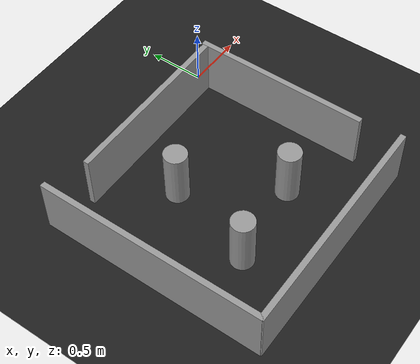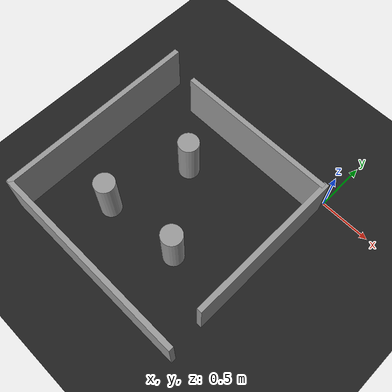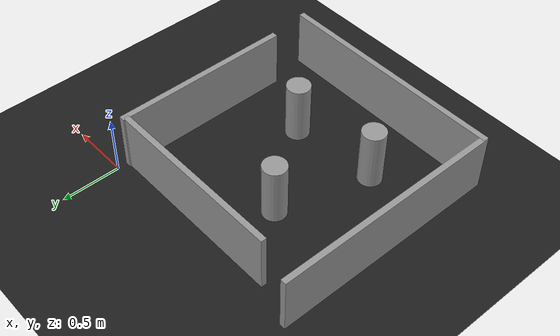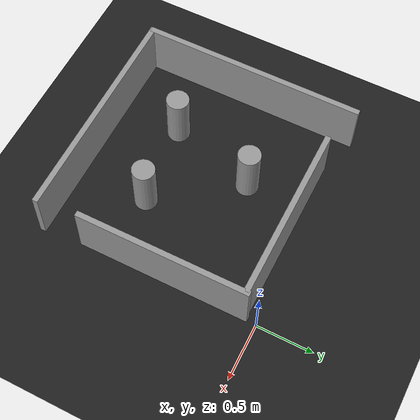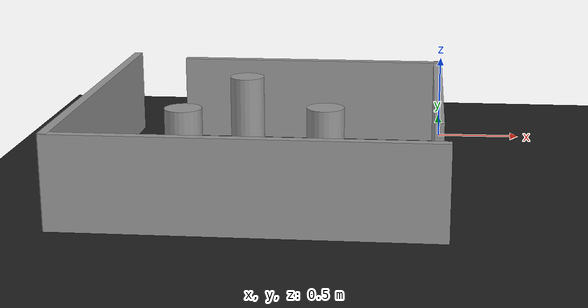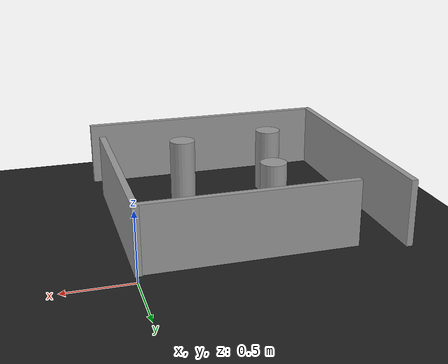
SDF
<sdf version="1.9">
 <world name="default">
  <scene>
   <ambient>0 0 0 1</ambient>
   <shadows>false</shadows>
   <grid>false</grid>
   <background>0.699999988 0.699999988 0.699999988 1</background>
  </scene>
  <light name="sun" type="directional">
   <pose>0 0 10 0 0 0</pose>
   <diffuse>0.800000012 0.800000012 0.800000012 1</diffuse>
   <specular>0.100000001 0.100000001 0.100000001 1</specular>
   <attenuation>
    <range>1000</range>
    <constant>0.90000000000000002</constant>
    <linear>0.01</linear>
    <quadratic>0.001</quadratic>
   </attenuation>
   <direction>-0.5 0.5 -1</direction>
   <spot><inner_angle>0</inner_angle><outer_angle>0</outer_angle><falloff>0</falloff></spot>
  </light>
  <model name="ground2">
   <pose>0 0 -0.10000000000000001 0 0 0</pose>
   <static>true</static>
   <link name="ground">
    <collision name="ground_coll"><geometry><box><size>8 8 0.01</size></box></geometry></collision>
    <visual name="ground_vis">
     <geometry><box><size>10 10 0.01</size></box></geometry>
     <material>
      <script><uri>file://media/materials/scripts/gazebo.material</uri><name>Gazebo/FlatBlack</name></script>
     </material>
    </visual>
   </link>
  </model>
  <gravity>0 0 -9.8000000000000007</gravity>
  <magnetic_field>6.0000000000000002e-06 2.3e-05 -4.1999999999999998e-05</magnetic_field>
  <atmosphere type="adiabatic"/>
  <physics name="default_physics" default="false" type="ode">
   <max_step_size>0.001</max_step_size>
   <real_time_factor>1</real_time_factor>
   <real_time_update_rate>1000</real_time_update_rate>
  </physics>
  <spherical_coordinates>
   <surface_model>EARTH_WGS84</surface_model>
   <latitude_deg>0</latitude_deg>
   <longitude_deg>0</longitude_deg>
   <elevation>0</elevation>
   <heading_deg>0</heading_deg>
  </spherical_coordinates>
  <light name="user_point_light_2" type="point">
   <pose>-0.94814600000000004 0.60451900000000003 1 0 0 0</pose>
   <diffuse>0.5 0.5 0.5 1</diffuse>
   <specular>0.100000001 0.100000001 0.100000001 1</specular>
   <attenuation>
    <range>20</range>
    <constant>0.5</constant>
    <linear>0.01</linear>
    <quadratic>0.001</quadratic>
   </attenuation>
   <cast_shadows>false</cast_shadows>
   <direction>0 0 -1</direction>
   <spot><inner_angle>0</inner_angle><outer_angle>0</outer_angle><falloff>0</falloff></spot>
  </light>
  <light name="user_point_light_6" type="point">
   <pose>1.6385400000000001 1.6956500000000001 1 0 0 0</pose>
   <diffuse>0.5 0.5 0.5 1</diffuse>
   <specular>0.100000001 0.100000001 0.100000001 1</specular>
   <attenuation>
    <range>20</range>
    <constant>0.5</constant>
    <linear>0.01</linear>
    <quadratic>0.001</quadratic>
   </attenuation>
   <cast_shadows>false</cast_shadows>
   <direction>0 0 -1</direction>
   <spot><inner_angle>0</inner_angle><outer_angle>0</outer_angle><falloff>0</falloff></spot>
  </light>
  <light name="user_point_light_7" type="point">
   <pose>0.41999999999999998 -3.3100000000000001 1 0 0 0</pose>
   <diffuse>0.5 0.5 0.5 1</diffuse>
   <specular>0.100000001 0.100000001 0.100000001 1</specular>
   <attenuation>
    <range>20</range>
    <constant>0.5</constant>
    <linear>0.01</linear>
    <quadratic>0.001</quadratic>
   </attenuation>
   <cast_shadows>false</cast_shadows>
   <direction>0 0 -1</direction>
   <spot><inner_angle>0</inner_angle><outer_angle>0</outer_angle><falloff>0</falloff></spot>
  </light>
  <light name="user_point_light_8" type="point">
   <pose>-1.8 1.5 1 0 0 0</pose>
   <diffuse>0.5 0.5 0.5 1</diffuse>
   <specular>0.100000001 0.100000001 0.100000001 1</specular>
   <attenuation>
    <range>20</range>
    <constant>0.5</constant>
    <linear>0.01</linear>
    <quadratic>0.001</quadratic>
   </attenuation>
   <cast_shadows>false</cast_shadows>
   <direction>0 0 -1</direction>
   <spot><inner_angle>0</inner_angle><outer_angle>0</outer_angle><falloff>0</falloff></spot>
  </light>
  <model name="tunnel_wall_3">
   <link name="Wall_12">
    <pose>-0.98078299999999996 0.049882999999999997 0 0 0 1.5708</pose>
    <visual name="Wall_12_Visual">
     <pose>0 0 0.25 0 0 0</pose>
     <geometry><box><size>2 0.050000000000000003 0.5</size></box></geometry>
     <material>
      <script><uri>file://media/materials/scripts/gazebo.material</uri><name>Gazebo/Grey</name></script>
      <ambient>1 1 1 1</ambient>
      <diffuse>0.699999988 0.699999988 0.699999988 1</diffuse>
      <specular>0.00999999978 0.00999999978 0.00999999978 1</specular>
      <emissive>0 0 0 1</emissive>
     </material>
    </visual>
    <collision name="Wall_12_Collision">
     <pose>0 0 0.25 0 0 0</pose>
     <geometry><box><size>2 0.050000000000000003 0.5</size></box></geometry>
     <surface>
      <friction>
       <ode><mu>1</mu><mu2>1</mu2><fdir1>0 0 0</fdir1><slip1>0</slip1><slip2>0</slip2></ode>
       <torsional>
        <coefficient>1</coefficient>
        <patch_radius>0</patch_radius>
        <surface_radius>0</surface_radius>
        <use_patch_radius>true</use_patch_radius>
        <ode><slip>0</slip></ode>
       </torsional>
      </friction>
      <bounce><restitution_coefficient>0</restitution_coefficient><threshold>1000000</threshold></bounce>
      <contact>
       <collide_without_contact>false</collide_without_contact>
       <collide_without_contact_bitmask>1</collide_without_contact_bitmask>
       <collide_bitmask>1</collide_bitmask>
       <ode>
        <soft_cfm>0</soft_cfm>
        <soft_erp>0.20000000000000001</soft_erp>
        <kp>10000000000000</kp>
        <kd>1</kd>
        <max_vel>0.01</max_vel>
        <min_depth>0</min_depth>
       </ode>
       <bullet>
        <split_impulse>true</split_impulse>
        <split_impulse_penetration_threshold>-0.01</split_impulse_penetration_threshold>
        <soft_cfm>0</soft_cfm>
        <soft_erp>0.20000000000000001</soft_erp>
        <kp>10000000000000</kp>
        <kd>1</kd>
       </bullet>
      </contact>
     </surface>
    </collision>
   </link>
   <link name="Wall_14">
    <pose>0 -0.93543799999999999 0 0 0 0</pose>
    <visual name="Wall_14_Visual">
     <pose>0 0 0.25 0 0 0</pose>
     <geometry><box><size>2.0000300000000002 0.050000000000000003 0.5</size></box></geometry>
     <material>
      <script><uri>file://media/materials/scripts/gazebo.material</uri><name>Gazebo/Grey</name></script>
      <ambient>1 1 1 1</ambient>
      <diffuse>0.699999988 0.699999988 0.699999988 1</diffuse>
      <specular>0.00999999978 0.00999999978 0.00999999978 1</specular>
      <emissive>0 0 0 1</emissive>
     </material>
    </visual>
    <collision name="Wall_14_Collision">
     <pose>0 0 0.25 0 0 0</pose>
     <geometry><box><size>2.0000300000000002 0.050000000000000003 0.5</size></box></geometry>
     <surface>
      <friction>
       <ode><mu>1</mu><mu2>1</mu2><fdir1>0 0 0</fdir1><slip1>0</slip1><slip2>0</slip2></ode>
       <torsional>
        <coefficient>1</coefficient>
        <patch_radius>0</patch_radius>
        <surface_radius>0</surface_radius>
        <use_patch_radius>true</use_patch_radius>
        <ode><slip>0</slip></ode>
       </torsional>
      </friction>
      <bounce><restitution_coefficient>0</restitution_coefficient><threshold>1000000</threshold></bounce>
      <contact>
       <collide_without_contact>false</collide_without_contact>
       <collide_without_contact_bitmask>1</collide_without_contact_bitmask>
       <collide_bitmask>1</collide_bitmask>
       <ode>
        <soft_cfm>0</soft_cfm>
        <soft_erp>0.20000000000000001</soft_erp>
        <kp>10000000000000</kp>
        <kd>1</kd>
        <max_vel>0.01</max_vel>
        <min_depth>0</min_depth>
       </ode>
       <bullet>
        <split_impulse>true</split_impulse>
        <split_impulse_penetration_threshold>-0.01</split_impulse_penetration_threshold>
        <soft_cfm>0</soft_cfm>
        <soft_erp>0.20000000000000001</soft_erp>
        <kp>10000000000000</kp>
        <kd>1</kd>
       </bullet>
      </contact>
     </surface>
    </collision>
   </link>
   <link name="Wall_16">
    <pose>0.94339600000000001 0.183669 0 0 0 1.5708</pose>
    <inertial>
     <inertia><ixx>nan</ixx><ixy>0</ixy><ixz>0</ixz><iyy>nan</iyy><iyz>0</iyz><izz>nan</izz></inertia>
     <mass>0</mass>
    </inertial>
    <visual name="Wall_16_Visual">
     <pose>0 0 0.25 0 0 0</pose>
     <geometry><box><size>1.5369900000000001 0.050000000000000003 0.5</size></box></geometry>
     <material>
      <script><uri>file://media/materials/scripts/gazebo.material</uri><name>Gazebo/Grey</name></script>
      <ambient>1 1 1 1</ambient>
      <diffuse>0.699999988 0.699999988 0.699999988 1</diffuse>
      <specular>0.00999999978 0.00999999978 0.00999999978 1</specular>
      <emissive>0 0 0 1</emissive>
     </material>
    </visual>
    <collision name="Wall_16_Collision">
     <pose>0 0 0.25 0 0 0</pose>
     <geometry><box><size>1.5369900000000001 0.050000000000000003 0.5</size></box></geometry>
     <surface>
      <friction>
       <ode><mu>1</mu><mu2>1</mu2><fdir1>0 0 0</fdir1><slip1>0</slip1><slip2>0</slip2></ode>
       <torsional>
        <coefficient>1</coefficient>
        <patch_radius>0</patch_radius>
        <surface_radius>0</surface_radius>
        <use_patch_radius>true</use_patch_radius>
        <ode><slip>0</slip></ode>
       </torsional>
      </friction>
      <bounce><restitution_coefficient>0</restitution_coefficient><threshold>1000000</threshold></bounce>
      <contact>
       <collide_without_contact>false</collide_without_contact>
       <collide_without_contact_bitmask>1</collide_without_contact_bitmask>
       <collide_bitmask>1</collide_bitmask>
       <ode>
        <soft_cfm>0</soft_cfm>
        <soft_erp>0.20000000000000001</soft_erp>
        <kp>10000000000000</kp>
        <kd>1</kd>
        <max_vel>0.01</max_vel>
        <min_depth>0</min_depth>
       </ode>
       <bullet>
        <split_impulse>true</split_impulse>
        <split_impulse_penetration_threshold>-0.01</split_impulse_penetration_threshold>
        <soft_cfm>0</soft_cfm>
        <soft_erp>0.20000000000000001</soft_erp>
        <kp>10000000000000</kp>
        <kd>1</kd>
       </bullet>
      </contact>
     </surface>
    </collision>
   </link>
   <link name="Wall_17">
    <pose>0.14999999999999999 0.91500000000000004 0 0 0 3.1415899999999999</pose>
    <visual name="Wall_17_Visual">
     <pose>0 0 0.25 0 0 0</pose>
     <geometry><box><size>1.5800000000000001 0.050000000000000003 0.5</size></box></geometry>
     <material>
      <script><uri>file://media/materials/scripts/gazebo.material</uri><name>Gazebo/Grey</name></script>
      <ambient>1 1 1 1</ambient>
      <diffuse>0.699999988 0.699999988 0.699999988 1</diffuse>
      <specular>0.00999999978 0.00999999978 0.00999999978 1</specular>
      <emissive>0 0 0 1</emissive>
     </material>
    </visual>
    <collision name="Wall_17_Collision">
     <pose>0 0 0.25 0 0 0</pose>
     <geometry><box><size>1.5800000000000001 0.050000000000000003 0.5</size></box></geometry>
     <surface>
      <friction>
       <ode><mu>1</mu><mu2>1</mu2><fdir1>0 0 0</fdir1><slip1>0</slip1><slip2>0</slip2></ode>
       <torsional>
        <coefficient>1</coefficient>
        <patch_radius>0</patch_radius>
        <surface_radius>0</surface_radius>
        <use_patch_radius>true</use_patch_radius>
        <ode><slip>0</slip></ode>
       </torsional>
      </friction>
      <bounce><restitution_coefficient>0</restitution_coefficient><threshold>1000000</threshold></bounce>
      <contact>
       <collide_without_contact>false</collide_without_contact>
       <collide_without_contact_bitmask>1</collide_without_contact_bitmask>
       <collide_bitmask>1</collide_bitmask>
       <ode>
        <soft_cfm>0</soft_cfm>
        <soft_erp>0.20000000000000001</soft_erp>
        <kp>10000000000000</kp>
        <kd>1</kd>
        <max_vel>0.01</max_vel>
        <min_depth>0</min_depth>
       </ode>
       <bullet>
        <split_impulse>true</split_impulse>
        <split_impulse_penetration_threshold>-0.01</split_impulse_penetration_threshold>
        <soft_cfm>0</soft_cfm>
        <soft_erp>0.20000000000000001</soft_erp>
        <kp>10000000000000</kp>
        <kd>1</kd>
       </bullet>
      </contact>
     </surface>
    </collision>
   </link>
   <static>true</static>
   <pose>-0.96469899999999997 -1.0357400000000001 0 0 0 0</pose>
  </model>
  <model name="tunnel_occ_2_1">
   <link name="link_0_clone_clone">
    <pose>0.42321999999999999 -0.212034 0.25 0 0 0</pose>
    <inertial>
     <mass>0.041666300000000003</mass>
     <inertia>
      <ixx>0.00098188000000000008</ixx>
      <ixy>0</ixy>
      <ixz>0</ixz>
      <iyy>0.00098188000000000008</iyy>
      <iyz>0</iyz>
      <izz>0.00046750999999999997</izz>
     </inertia>
    </inertial>
    <visual name="visual">
     <geometry><cylinder><radius>0.10000000000000001</radius><length>0.5</length></cylinder></geometry>
     <material>
      <lighting>true</lighting>
      <script><uri>file://media/materials/scripts/gazebo.material</uri><name>Gazebo/Grey</name></script>
      <ambient>0.300000012 0.300000012 0.300000012 1</ambient>
      <diffuse>0.699999988 0.699999988 0.699999988 1</diffuse>
      <specular>0.00999999978 0.00999999978 0.00999999978 1</specular>
      <emissive>0 0 0 1</emissive>
      <shader type="pixel"><normal_map>__default__</normal_map></shader>
     </material>
    </visual>
    <collision name="collision">
     <geometry>
      <cylinder><radius>0.10000000000000001</radius><length>0.46417999999999998</length></cylinder>
     </geometry>
     <surface>
      <friction>
       <ode><mu>1</mu><mu2>1</mu2><fdir1>0 0 0</fdir1><slip1>0</slip1><slip2>0</slip2></ode>
       <torsional>
        <coefficient>1</coefficient>
        <patch_radius>0</patch_radius>
        <surface_radius>0</surface_radius>
        <use_patch_radius>true</use_patch_radius>
        <ode><slip>0</slip></ode>
       </torsional>
      </friction>
      <bounce><restitution_coefficient>0</restitution_coefficient><threshold>1000000</threshold></bounce>
      <contact>
       <collide_without_contact>false</collide_without_contact>
       <collide_without_contact_bitmask>1</collide_without_contact_bitmask>
       <collide_bitmask>1</collide_bitmask>
       <ode>
        <soft_cfm>0</soft_cfm>
        <soft_erp>0.20000000000000001</soft_erp>
        <kp>10000000000000</kp>
        <kd>1</kd>
        <max_vel>0.01</max_vel>
        <min_depth>0</min_depth>
       </ode>
       <bullet>
        <split_impulse>true</split_impulse>
        <split_impulse_penetration_threshold>-0.01</split_impulse_penetration_threshold>
        <soft_cfm>0</soft_cfm>
        <soft_erp>0.20000000000000001</soft_erp>
        <kp>10000000000000</kp>
        <kd>1</kd>
       </bullet>
      </contact>
     </surface>
    </collision>
   </link>
   <link name="link_0_clone_clone_clone">
    <pose>-0.32372899999999999 -0.28756300000000001 0.25 0 0 0</pose>
    <inertial>
     <mass>0.041666300000000003</mass>
     <inertia>
      <ixx>0.00098188000000000008</ixx>
      <ixy>0</ixy>
      <ixz>0</ixz>
      <iyy>0.00098188000000000008</iyy>
      <iyz>0</iyz>
      <izz>0.00046750999999999997</izz>
     </inertia>
    </inertial>
    <visual name="visual">
     <geometry><cylinder><radius>0.10000000000000001</radius><length>0.5</length></cylinder></geometry>
     <material>
      <lighting>true</lighting>
      <script><uri>file://media/materials/scripts/gazebo.material</uri><name>Gazebo/Grey</name></script>
      <ambient>0.300000012 0.300000012 0.300000012 1</ambient>
      <diffuse>0.699999988 0.699999988 0.699999988 1</diffuse>
      <specular>0.00999999978 0.00999999978 0.00999999978 1</specular>
      <emissive>0 0 0 1</emissive>
      <shader type="pixel"><normal_map>__default__</normal_map></shader>
     </material>
    </visual>
    <collision name="collision">
     <geometry>
      <cylinder><radius>0.10000000000000001</radius><length>0.46417999999999998</length></cylinder>
     </geometry>
     <surface>
      <friction>
       <ode><mu>1</mu><mu2>1</mu2><fdir1>0 0 0</fdir1><slip1>0</slip1><slip2>0</slip2></ode>
       <torsional>
        <coefficient>1</coefficient>
        <patch_radius>0</patch_radius>
        <surface_radius>0</surface_radius>
        <use_patch_radius>true</use_patch_radius>
        <ode><slip>0</slip></ode>
       </torsional>
      </friction>
      <bounce><restitution_coefficient>0</restitution_coefficient><threshold>1000000</threshold></bounce>
      <contact>
       <collide_without_contact>false</collide_without_contact>
       <collide_without_contact_bitmask>1</collide_without_contact_bitmask>
       <collide_bitmask>1</collide_bitmask>
       <ode>
        <soft_cfm>0</soft_cfm>
        <soft_erp>0.20000000000000001</soft_erp>
        <kp>10000000000000</kp>
        <kd>1</kd>
        <max_vel>0.01</max_vel>
        <min_depth>0</min_depth>
       </ode>
       <bullet>
        <split_impulse>true</split_impulse>
        <split_impulse_penetration_threshold>-0.01</split_impulse_penetration_threshold>
        <soft_cfm>0</soft_cfm>
        <soft_erp>0.20000000000000001</soft_erp>
        <kp>10000000000000</kp>
        <kd>1</kd>
       </bullet>
      </contact>
     </surface>
    </collision>
   </link>
   <link name="link_0_clone_clone_clone_clone">
    <pose>-0.099491999999999997 0.49959399999999998 0.25 0 0 0</pose>
    <inertial>
     <mass>0.041666300000000003</mass>
     <inertia>
      <ixx>0.00098188000000000008</ixx>
      <ixy>0</ixy>
      <ixz>0</ixz>
      <iyy>0.00098188000000000008</iyy>
      <iyz>0</iyz>
      <izz>0.00046750999999999997</izz>
     </inertia>
    </inertial>
    <visual name="visual">
     <geometry><cylinder><radius>0.10000000000000001</radius><length>0.5</length></cylinder></geometry>
     <material>
      <lighting>true</lighting>
      <script><uri>file://media/materials/scripts/gazebo.material</uri><name>Gazebo/Grey</name></script>
      <ambient>0.300000012 0.300000012 0.300000012 1</ambient>
      <diffuse>0.699999988 0.699999988 0.699999988 1</diffuse>
      <specular>0.00999999978 0.00999999978 0.00999999978 1</specular>
      <emissive>0 0 0 1</emissive>
      <shader type="pixel"><normal_map>__default__</normal_map></shader>
     </material>
    </visual>
    <collision name="collision">
     <geometry>
      <cylinder><radius>0.10000000000000001</radius><length>0.46417999999999998</length></cylinder>
     </geometry>
     <surface>
      <friction>
       <ode><mu>1</mu><mu2>1</mu2><fdir1>0 0 0</fdir1><slip1>0</slip1><slip2>0</slip2></ode>
       <torsional>
        <coefficient>1</coefficient>
        <patch_radius>0</patch_radius>
        <surface_radius>0</surface_radius>
        <use_patch_radius>true</use_patch_radius>
        <ode><slip>0</slip></ode>
       </torsional>
      </friction>
      <bounce><restitution_coefficient>0</restitution_coefficient><threshold>1000000</threshold></bounce>
      <contact>
       <collide_without_contact>false</collide_without_contact>
       <collide_without_contact_bitmask>1</collide_without_contact_bitmask>
       <collide_bitmask>1</collide_bitmask>
       <ode>
        <soft_cfm>0</soft_cfm>
        <soft_erp>0.20000000000000001</soft_erp>
        <kp>10000000000000</kp>
        <kd>1</kd>
        <max_vel>0.01</max_vel>
        <min_depth>0</min_depth>
       </ode>
       <bullet>
        <split_impulse>true</split_impulse>
        <split_impulse_penetration_threshold>-0.01</split_impulse_penetration_threshold>
        <soft_cfm>0</soft_cfm>
        <soft_erp>0.20000000000000001</soft_erp>
        <kp>10000000000000</kp>
        <kd>1</kd>
       </bullet>
      </contact>
     </surface>
    </collision>
   </link>
   <static>true</static>
   <pose>-1.04145 -1.1267100000000001 0 0 0 0</pose>
  </model>
 </world>
</sdf>
